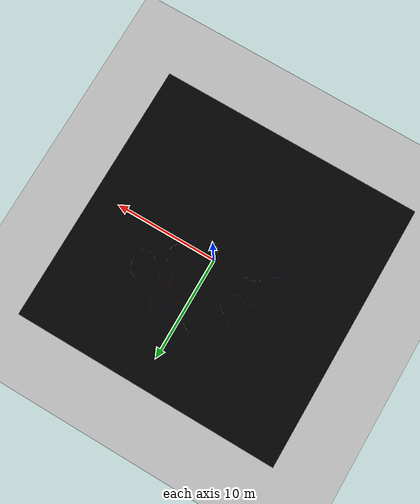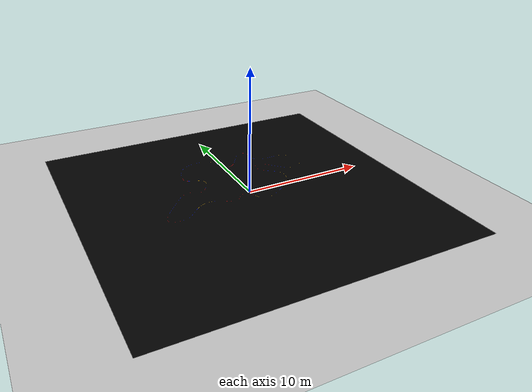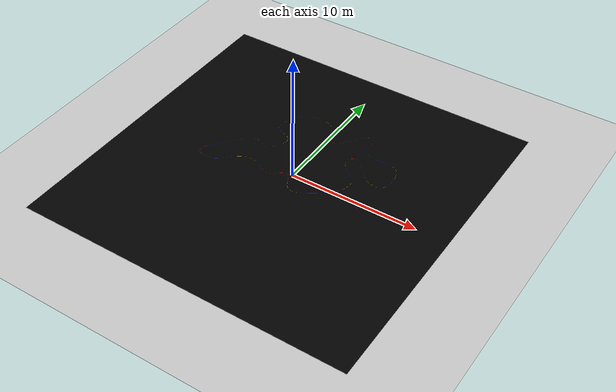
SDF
<?xml version="1.0" ?>

<sdf version="1.6">
  <world name="empty">
    <physics name='4ms' type='ode'>
      <max_step_size>0.004</max_step_size>
      <real_time_factor>1</real_time_factor>
      <real_time_update_rate>250</real_time_update_rate>
    </physics>
    <plugin
      filename="gz-sim-physics-system"
      name="gz::sim::systems::Physics">
    </plugin>
    <plugin
      filename="gz-sim-user-commands-system"
      name="gz::sim::systems::UserCommands">
    </plugin>
    <plugin
      filename="gz-sim-scene-broadcaster-system"
      name="gz::sim::systems::SceneBroadcaster">
    </plugin>
    <plugin
      filename="gz-sim-contact-system"
      name="gz::sim::systems::Contact">
    </plugin>

    <plugin
      filename="gz-sim-sensors-system"
      name="gz::sim::systems::Sensors">
      <render_engine>ogre2</render_engine>
    </plugin>
    <plugin
      filename="gz-sim-imu-system"
      name="gz::sim::systems::Imu">
    </plugin>
    <plugin
      filename="gz-sim-navsat-system"
      name="gz::sim::systems::NavSat">
    </plugin>
    <!-- Set the coordinates for the world origin -->
    <spherical_coordinates>
      <surface_model>EARTH_WGS84</surface_model>
      <world_frame_orientation>ENU</world_frame_orientation>
      <latitude_deg>47.478950</latitude_deg>
      <longitude_deg>19.057785</longitude_deg>
      <elevation>0</elevation>
      <heading_deg>0</heading_deg>
    </spherical_coordinates>

    <light type="directional" name="sun">
      <cast_shadows>true</cast_shadows>
      <pose>0 0 10 0 0 0</pose>
      <diffuse>0.8 0.8 0.8 1</diffuse>
      <specular>0.2 0.2 0.2 1</specular>
      <attenuation>
        <range>1000</range>
        <constant>0.9</constant>
        <linear>0.01</linear>
        <quadratic>0.001</quadratic>
      </attenuation>
      <direction>-0.5 0.1 -0.9</direction>
    </light>

    <gravity>0 0 -9.8000000000000007</gravity>
    <magnetic_field>5.5644999999999998e-06 2.2875799999999999e-05 -4.2388400000000002e-05</magnetic_field>
    <atmosphere type='adiabatic'/>
    <scene>
      <ambient>0.400000006 0.400000006 0.400000006 1</ambient>
      <background>0.699999988 0.699999988 0.699999988 1</background>
      <shadows>true</shadows>
    </scene>

    <model name="ground_plane">
      <static>true</static>
      <link name="link">
        <collision name="collision">
          <geometry>
            <plane>
              <normal>0 0 1</normal>
              <size>100 100</size>
            </plane>
          </geometry>
          <surface>
            <friction>
              <ode>
                <mu>50</mu>
              </ode>
            </friction>
            <bounce/>
            <contact/>
          </surface>
        </collision>
        <visual name="visual">
          <geometry>
            <plane>
              <normal>0 0 1</normal>
              <size>100 100</size>
            </plane>
          </geometry>
          <material>
            <ambient>0.8 0.8 0.8 1</ambient>
            <diffuse>0.8 0.8 0.8 1</diffuse>
            <specular>0.8 0.8 0.8 1</specular>
          </material>
        </visual>
      </link>
    </model>

    <model name='dark_bg'>
      <static>true</static>
      <link name='link_0'>
        <inertial>
          <mass>1</mass>
          <inertia>
            <ixx>0.166667</ixx>
            <ixy>0</ixy>
            <ixz>0</ixz>
            <iyy>0.166667</iyy>
            <iyz>0</iyz>
            <izz>0.166667</izz>
          </inertia>
          <pose>0 0 0 0 -0 0</pose>
        </inertial>
        <pose>0 0 0 0 -0 0</pose>
        <gravity>1</gravity>
        <self_collide>0</self_collide>
        <kinematic>1</kinematic>
        <enable_wind>0</enable_wind>
        <visual name='visual'>
          <pose>0 0 0 0 -0 0</pose>
          <geometry>
            <mesh>
              <uri>model://colorful_line_dark/meshes/colorful_line_dark.dae</uri>
              <scale>0.02 0.02 0.001</scale>
            </mesh>
          </geometry>
          <transparency>0</transparency>
          <cast_shadows>1</cast_shadows>
        </visual>
        <collision name='collision'>
          <laser_retro>0</laser_retro>
          <max_contacts>10</max_contacts>
          <pose>0 0 0 0 -0 0</pose>
          <geometry>
            <mesh>
              <uri>odel://colorful_line_dark/meshes/colorful_line_dark.dae</uri>
              <scale>0.02 0.02 0.001</scale>
            </mesh>
          </geometry>
          <surface>
            <friction>
              <ode>
                <mu>100</mu>
                <mu2>50</mu2>
                <fdir1>0 0 0</fdir1>
                <slip1>0</slip1>
                <slip2>0</slip2>
              </ode>
              <torsional>
                <coefficient>1</coefficient>
                <patch_radius>0</patch_radius>
                <surface_radius>0</surface_radius>
                <use_patch_radius>1</use_patch_radius>
                <ode>
                  <slip>0</slip>
                </ode>
              </torsional>
            </friction>
            <bounce>
              <restitution_coefficient>0</restitution_coefficient>
              <threshold>1e+06</threshold>
            </bounce>
            <contact>
              <collide_without_contact>0</collide_without_contact>
              <collide_without_contact_bitmask>1</collide_without_contact_bitmask>
              <collide_bitmask>1</collide_bitmask>
              <ode>
                <soft_cfm>0</soft_cfm>
                <soft_erp>0.2</soft_erp>
                <kp>1e+13</kp>
                <kd>1</kd>
                <max_vel>0.01</max_vel>
                <min_depth>0</min_depth>
              </ode>
              <bullet>
                <split_impulse>1</split_impulse>
                <split_impulse_penetration_threshold>-0.01</split_impulse_penetration_threshold>
                <soft_cfm>0</soft_cfm>
                <soft_erp>0.2</soft_erp>
                <kp>1e+13</kp>
                <kd>1</kd>
              </bullet>
            </contact>
          </surface>
        </collision>
      </link>
      <allow_auto_disable>1</allow_auto_disable>
      <pose>-0.475237 -0.09932 0 0 -0 0</pose>
    </model>

  </world>
</sdf>
